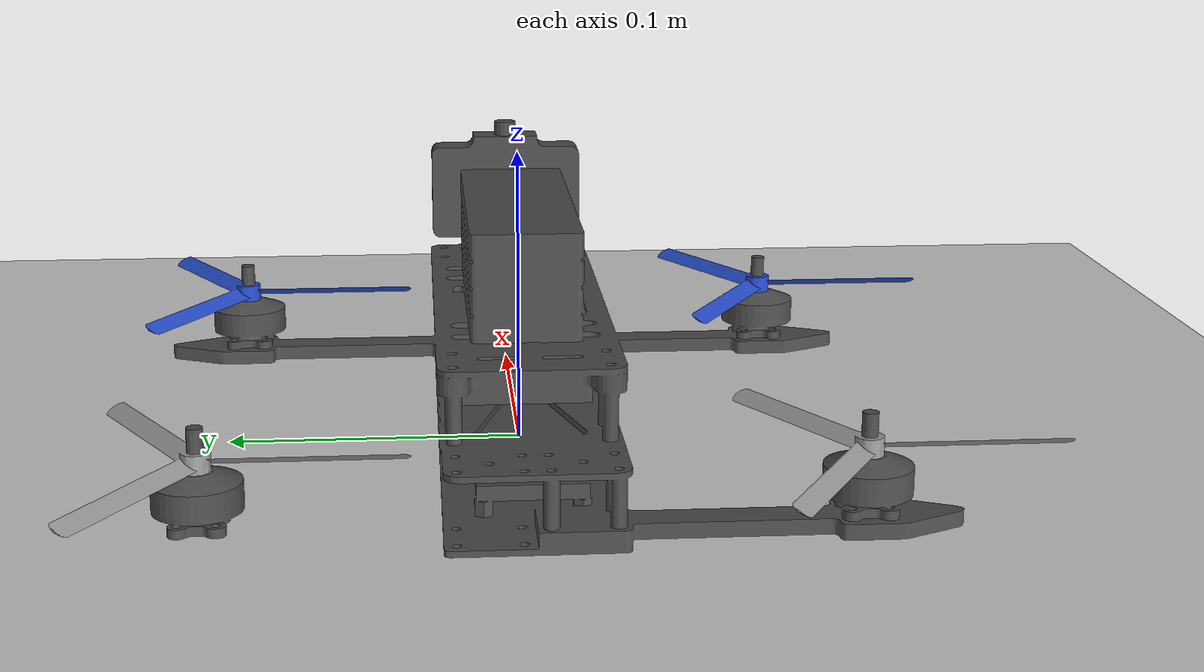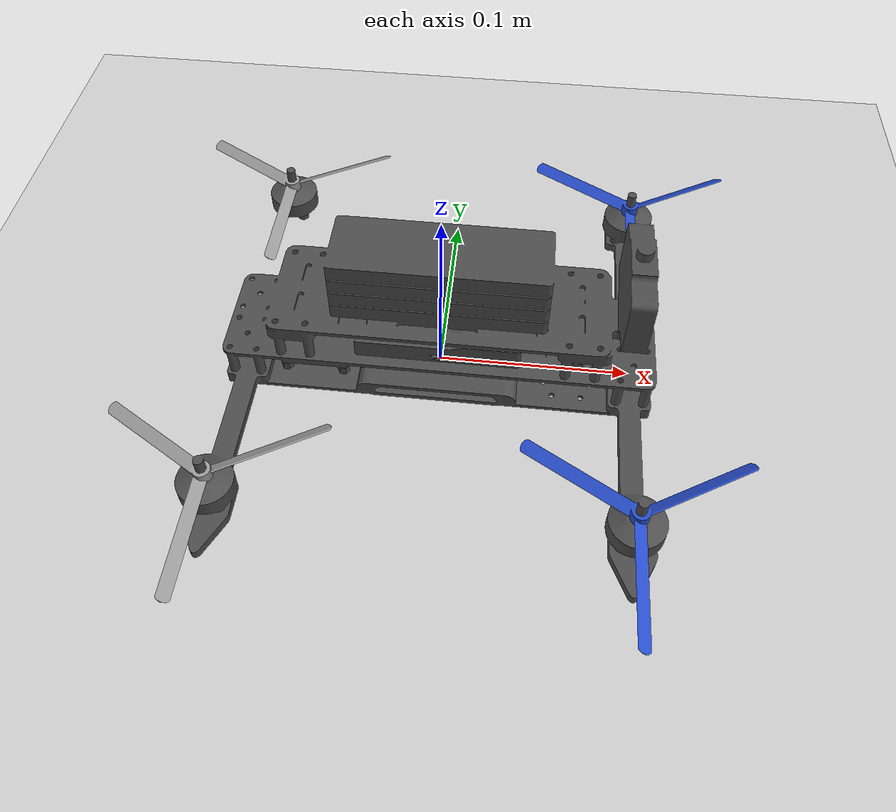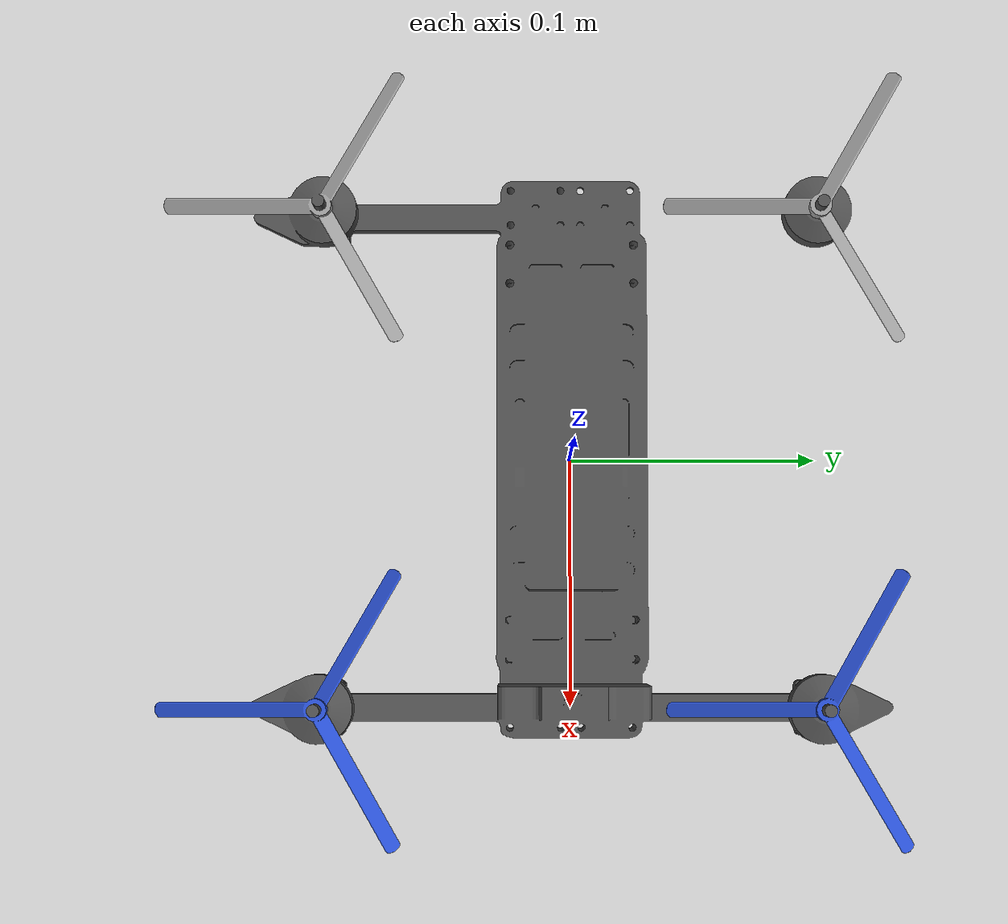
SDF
<?xml version="1.0" ?>

<sdf version="1.6">
  <world name="default">
    <physics type="ode">
      <ode>
        <solver>
          <type>quick</type>
          <iters>100</iters>
          <sor>1.0</sor>
        </solver>
        <constraints>
          <cfm>0.0</cfm>
          <erp>0.9</erp>
          <contact_max_correcting_vel>0.1</contact_max_correcting_vel>
          <contact_surface_layer>0.0</contact_surface_layer>
        </constraints>
      </ode>
      <real_time_update_rate>0</real_time_update_rate>
      <max_step_size>0.0025</max_step_size>
    </physics>

      <include>
      <uri>model://sun</uri>
    </include>

    <model name="ground_plane">
      <static>true</static>
      <link name="link">
        <collision name="collision">
          <geometry>
            <plane>
              <normal>0 0 1</normal>
              <size>5000 5000</size>
            </plane>
          </geometry>
          <surface>
            <friction>
              <ode>
                <mu>1</mu>
                <mu2>1</mu2>
              </ode>
            </friction>
          </surface>
        </collision>
        <visual name="runway">
          <pose>000 0 0.005 0 0 -1.5707</pose>
          <cast_shadows>false</cast_shadows>
          <geometry>
            <plane>
              <normal>0 0 1</normal>
              <size>1829 45</size>
            </plane>
          </geometry>
          <material>
            <script>
              <uri>file://media/materials/scripts/gazebo.material</uri>
              <name>Gazebo/Runway</name>
            </script>
          </material>
        </visual>

        <visual name="grass">
          <pose>0 0 -0.1 0 0 0</pose>
          <cast_shadows>false</cast_shadows>
          <geometry>
            <plane>
              <normal>0 0 1</normal>
              <size>5000 5000</size>
            </plane>
          </geometry>
          <material>
            <script>
              <uri>file://media/materials/scripts/gazebo.material</uri>
              <name>Gazebo/Grass</name>
            </script>
          </material>
        </visual>

      </link>
    </model>

    <model name="lqd_copter">
      <pose> 0 0 0 0 0 0 </pose>
      <include>
        <uri>model://lqd_copter</uri>
         <pose> 0 0 0 0 0 0 </pose>
      </include>
    </model>
  </world>
</sdf>

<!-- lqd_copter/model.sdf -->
<sdf version="1.7">
  <model name="lqd_copter">
    <pose>0 0 0.15 0 0 0</pose>

    <!-- Base Link -->
    <link name="base_link">
      <velocity_decay>
        <linear>0.0</linear>
        <angular>0.0</angular>
      </velocity_decay>
      <inertial>
        <pose>0 0 0 0 0 0</pose>
        <mass>0.52</mass>
        <inertia>
          <ixx>0.011</ixx>
          <ixy>0</ixy>
          <ixz>0</ixz>
          <iyy>0.015</iyy>
          <iyz>0</iyz>
          <izz>0.021</izz>
        </inertia>
      </inertial>

      <collision name="base_link_collision">
        <pose>0 0 0 0 0 0</pose>
        <geometry>
          <box><size>0.4 0.4 0.15</size></box>
        </geometry>
        <surface>
          <friction>
            <ode>
              <mu>1.0</mu>
              <mu2>1.0</mu2>
            </ode>
          </friction>
          <contact>
            <ode>
              <kp>1000000.0</kp>
              <kd>1.0</kd>
              <min_depth>0.001</min_depth>
              <max_vel>0.1</max_vel>
            </ode>
          </contact>
        </surface>
      </collision>

      <visual name="base_link_visual">
        <pose>0 0 0 0 0 0</pose>
        <geometry>
          <mesh>
            <scale>1 1 1</scale>
            <uri>model://lqd_copter/meshes/base_link.STL</uri>
          </mesh>
        </geometry>
        <material>
          <script>
            <name>Gazebo/DarkGrey</name>
            <uri>file://media/materials/scripts/gazebo.material</uri>
          </script>
        </material>
      </visual>
    </link>

    <!-- IMU Link -->
    <link name='imu_link'>
      <pose>0 0 0 0 0 0</pose>
      <inertial>
        <pose>0 0 0 0 0 0</pose>
        <mass>0.015</mass>
        <inertia>
          <ixx>0.00001</ixx><ixy>0</ixy><ixz>0</ixz>
          <iyy>0.00002</iyy><iyz>0</iyz><izz>0.00002</izz>
        </inertia>
      </inertial>
      <sensor name="imu_sensor" type="imu">
        <pose>0 0 0 3.141593 0 0</pose>
        <always_on>1</always_on>
        <update_rate>1000.0</update_rate>
      </sensor>
    </link>
    <joint name='imu_joint' type='revolute'>
      <child>imu_link</child>
      <parent>base_link</parent>
      <axis>
        <xyz>0 0 1</xyz>
        <limit><lower>0</lower><upper>0</upper><effort>0</effort><velocity>0</velocity></limit>
      </axis>
    </joint>

    <!-- Rotor 0 -->
    <joint name="rotor_0_joint" type="revolute">
      <pose relative_to="base_link">0.1 -0.1 0.025 0 0 0</pose>
      <parent>base_link</parent>
      <child>rotor_0_link</child>
      <axis>
        <xyz>0 0 1</xyz>
        <limit><lower>-1e16</lower><upper>1e16</upper></limit>
        <dynamics><spring_reference>0</spring_reference><spring_stiffness>0</spring_stiffness></dynamics>
      </axis>
    </joint>
    <link name="rotor_0_link">
      <pose relative_to="rotor_0_joint">0 0 0 0 0 0</pose>
      <inertial>
        <mass>0.005</mass>
        <inertia>
          <ixx>9.75e-06</ixx>
          <ixy>0</ixy><ixz>0</ixz>
          <iyy>0.000273104</iyy><iyz>0</iyz><izz>0.000274004</izz>
        </inertia>
      </inertial>
      <visual name="rotor_0_visual">
        <geometry>
          <mesh><scale>1 1 1</scale><uri>model://lqd_copter/meshes/properller_1_link.STL</uri></mesh>
        </geometry>
        <material><script><name>Gazebo/Blue</name></script></material>
      </visual>
    </link>

    <!-- Rotor 1 -->
    <joint name="rotor_1_joint" type="revolute">
      <pose relative_to="base_link">-0.1 0.1 0.025 0 0 0</pose>
      <parent>base_link</parent>
      <child>rotor_1_link</child>
      <axis>
        <xyz>0 0 1</xyz>
        <limit><lower>-1e16</lower><upper>1e16</upper></limit>
        <dynamics><spring_reference>0</spring_reference><spring_stiffness>0</spring_stiffness></dynamics>
      </axis>
    </joint>
    <link name="rotor_1_link">
      <pose relative_to="rotor_1_joint">0 0 0 0 0 0</pose>
      <inertial>
        <mass>0.005</mass>
        <inertia>
          <ixx>9.75e-06</ixx>
          <ixy>0</ixy><ixz>0</ixz>
          <iyy>0.000273104</iyy><iyz>0</iyz><izz>0.000274004</izz>
        </inertia>
      </inertial>
      <visual name="rotor_1_visual">
        <geometry>
          <mesh><scale>1 1 1</scale><uri>model://lqd_copter/meshes/properller_2_link.STL</uri></mesh>
        </geometry>
        <material><script><name>Gazebo/Grey</name></script></material>
      </visual>
    </link>

    <!-- Rotor 2 -->
    <joint name="rotor_2_joint" type="revolute">
      <pose relative_to="base_link">0.1 0.1 0.025 0 0 0</pose>
      <parent>base_link</parent>
      <child>rotor_2_link</child>
      <axis>
        <xyz>0 0 1</xyz>
        <limit><lower>-1e16</lower><upper>1e16</upper></limit>
        <dynamics><spring_reference>0</spring_reference><spring_stiffness>0</spring_stiffness></dynamics>
      </axis>
    </joint>
    <link name="rotor_2_link">
      <pose relative_to="rotor_2_joint">0 0 0 0 0 0</pose>
      <inertial>
        <mass>0.005</mass>
        <inertia>
          <ixx>9.75e-06</ixx>
          <ixy>0</ixy><ixz>0</ixz>
          <iyy>0.000273104</iyy><iyz>0</iyz><izz>0.000274004</izz>
        </inertia>
      </inertial>
      <visual name="rotor_2_visual">
        <geometry>
          <mesh><scale>1 1 1</scale><uri>model://lqd_copter/meshes/properller_3_link.STL</uri></mesh>
        </geometry>
        <material><script><name>Gazebo/Blue</name></script></material>
      </visual>
    </link>

    <!-- Rotor 3 -->
    <joint name="rotor_3_joint" type="revolute">
      <pose relative_to="base_link">-0.1 -0.1 0.025 0 0 0</pose>
      <parent>base_link</parent>
      <child>rotor_3_link</child>
      <axis>
        <xyz>0 0 1</xyz>
        <limit><lower>-1e16</lower><upper>1e16</upper></limit>
        <dynamics><spring_reference>0</spring_reference><spring_stiffness>0</spring_stiffness></dynamics>
      </axis>
    </joint>
    <link name="rotor_3_link">
      <pose relative_to="rotor_3_joint">0 0 0 0 0 0</pose>
      <inertial>
        <mass>0.005</mass>
        <inertia>
          <ixx>9.75e-06</ixx>
          <ixy>0</ixy><ixz>0</ixz>
          <iyy>0.000273104</iyy><iyz>0</iyz><izz>0.000274004</izz>
        </inertia>
      </inertial>
      <visual name="rotor_3_visual">
        <geometry>
          <mesh><scale>1 1 1</scale><uri>model://lqd_copter/meshes/properller_4_link.STL</uri></mesh>
        </geometry>
        <material><script><name>Gazebo/Grey</name></script></material>
      </visual>
    </link>

    <!-- Aerodynamics (Softened for Light Drone)    -->
    <!-- CDA reduced from 0.10 to 0.01              -->

    <!-- Rotor 0 (CCW) -->
    <plugin name="rotor_0_blade_1" filename="libLiftDragPlugin.so">
      <a0>0.3</a0><alpha_stall>1.4</alpha_stall><cla>4.25</cla>
      <cda>0.01</cda> <!-- Reduced Drag -->
      <cma>0.0</cma><cla_stall>-0.025</cla_stall><cda_stall>0.0</cda_stall><cma_stall>0.0</cma_stall>
      <area>0.002</area><air_density>1.2041</air_density>
      <cp>0.084 0 0</cp><forward>0 1 0</forward><upward>0 0 1</upward>
      <link_name>rotor_0_link</link_name>
    </plugin>
    <plugin name="rotor_0_blade_2" filename="libLiftDragPlugin.so">
      <a0>0.3</a0><alpha_stall>1.4</alpha_stall><cla>4.25</cla>
      <cda>0.01</cda> <!-- Reduced Drag -->
      <cma>0.0</cma><cla_stall>-0.025</cla_stall><cda_stall>0.0</cda_stall><cma_stall>0.0</cma_stall>
      <area>0.002</area><air_density>1.2041</air_density>
      <cp>-0.084 0 0</cp><forward>0 -1 0</forward><upward>0 0 1</upward>
      <link_name>rotor_0_link</link_name>
    </plugin>

    <!-- Rotor 1 (CCW) -->
    <plugin name="rotor_1_blade_1" filename="libLiftDragPlugin.so">
      <a0>0.3</a0><alpha_stall>1.4</alpha_stall><cla>4.25</cla>
      <cda>0.01</cda> <!-- Reduced Drag -->
      <cma>0.0</cma><cla_stall>-0.025</cla_stall><cda_stall>0.0</cda_stall><cma_stall>0.0</cma_stall>
      <area>0.002</area><air_density>1.2041</air_density>
      <cp>0.084 0 0</cp><forward>0 1 0</forward><upward>0 0 1</upward>
      <link_name>rotor_1_link</link_name>
    </plugin>
    <plugin name="rotor_1_blade_2" filename="libLiftDragPlugin.so">
      <a0>0.3</a0><alpha_stall>1.4</alpha_stall><cla>4.25</cla>
      <cda>0.01</cda> <!-- Reduced Drag -->
      <cma>0.0</cma><cla_stall>-0.025</cla_stall><cda_stall>0.0</cda_stall><cma_stall>0.0</cma_stall>
      <area>0.002</area><air_density>1.2041</air_density>
      <cp>-0.084 0 0</cp><forward>0 -1 0</forward><upward>0 0 1</upward>
      <link_name>rotor_1_link</link_name>
    </plugin>

    <!-- Rotor 2 (CW) -->
    <plugin name="rotor_2_blade_1" filename="libLiftDragPlugin.so">
      <a0>0.3</a0><alpha_stall>1.4</alpha_stall><cla>4.25</cla>
      <cda>0.01</cda> <!-- Reduced Drag -->
      <cma>0.0</cma><cla_stall>-0.025</cla_stall><cda_stall>0.0</cda_stall><cma_stall>0.0</cma_stall>
      <area>0.002</area><air_density>1.2041</air_density>
      <cp>0.084 0 0</cp><forward>0 -1 0</forward><upward>0 0 1</upward>
      <link_name>rotor_2_link</link_name>
    </plugin>
    <plugin name="rotor_2_blade_2" filename="libLiftDragPlugin.so">
      <a0>0.3</a0><alpha_stall>1.4</alpha_stall><cla>4.25</cla>
      <cda>0.01</cda> <!-- Reduced Drag -->
      <cma>0.0</cma><cla_stall>-0.025</cla_stall><cda_stall>0.0</cda_stall><cma_stall>0.0</cma_stall>
      <area>0.002</area><air_density>1.2041</air_density>
      <cp>-0.084 0 0</cp><forward>0 1 0</forward><upward>0 0 1</upward>
      <link_name>rotor_2_link</link_name>
    </plugin>

    <!-- Rotor 3 (CW) -->
    <plugin name="rotor_3_blade_1" filename="libLiftDragPlugin.so">
      <a0>0.3</a0><alpha_stall>1.4</alpha_stall><cla>4.25</cla>
      <cda>0.01</cda> <!-- Reduced Drag -->
      <cma>0.0</cma><cla_stall>-0.025</cla_stall><cda_stall>0.0</cda_stall><cma_stall>0.0</cma_stall>
      <area>0.002</area><air_density>1.2041</air_density>
      <cp>0.084 0 0</cp><forward>0 -1 0</forward><upward>0 0 1</upward>
      <link_name>rotor_3_link</link_name>
    </plugin>
    <plugin name="rotor_3_blade_2" filename="libLiftDragPlugin.so">
      <a0>0.3</a0><alpha_stall>1.4</alpha_stall><cla>4.25</cla>
      <cda>0.01</cda> <!-- Reduced Drag -->
      <cma>0.0</cma><cla_stall>-0.025</cla_stall><cda_stall>0.0</cda_stall><cma_stall>0.0</cma_stall>
      <area>0.002</area><air_density>1.2041</air_density>
      <cp>-0.084 0 0</cp><forward>0 1 0</forward><upward>0 0 1</upward>
      <link_name>rotor_3_link</link_name>
    </plugin>

    <!-- ArduPilot Plugin -->
    <plugin name="ardupilot_plugin" filename="libArduPilotPlugin.so">
      <fdm_addr>127.0.0.1</fdm_addr>
      <fdm_port_in>9002</fdm_port_in>
      <fdm_port_out>9003</fdm_port_out>

      <modelXYZToAirplaneXForwardZDown>0 0 0 3.141593 0 0</modelXYZToAirplaneXForwardZDown>

      <imuName>lqd_copter::imu_link::imu_sensor</imuName>
      <connectionTimeoutMaxCount>5</connectionTimeoutMaxCount>

      <!-- Channel 0 (Rotor 0, CCW) -->
      <control channel="0">
        <type>VELOCITY</type>
        <offset>0</offset>
        <p_gain>0.10</p_gain> <!-- Reduced P Gain -->
        <i_gain>0</i_gain>
        <d_gain>0</d_gain>
        <i_max>0</i_max>
        <i_min>0</i_min>
        <cmd_max>2.5</cmd_max>
        <cmd_min>-2.5</cmd_min>
        <jointName>rotor_0_joint</jointName>
        <multiplier>838</multiplier>
        <controlVelocitySlowdownSim>1</controlVelocitySlowdownSim>
      </control>

      <!-- Channel 1 (Rotor 1, CCW) -->
      <control channel="1">
        <type>VELOCITY</type>
        <offset>0</offset>
        <p_gain>0.10</p_gain> <!-- Reduced P Gain -->
        <i_gain>0</i_gain>
        <d_gain>0</d_gain>
        <i_max>0</i_max>
        <i_min>0</i_min>
        <cmd_max>2.5</cmd_max>
        <cmd_min>-2.5</cmd_min>
        <jointName>rotor_1_joint</jointName>
        <multiplier>838</multiplier>
        <controlVelocitySlowdownSim>1</controlVelocitySlowdownSim>
      </control>

      <!-- Channel 2 (Rotor 2, CW) -->
      <control channel="2">
        <type>VELOCITY</type>
        <offset>0</offset>
        <p_gain>0.10</p_gain> <!-- Reduced P Gain -->
        <i_gain>0</i_gain>
        <d_gain>0</d_gain>
        <i_max>0</i_max>
        <i_min>0</i_min>
        <cmd_max>2.5</cmd_max>
        <cmd_min>-2.5</cmd_min>
        <jointName>rotor_2_joint</jointName>
        <multiplier>-838</multiplier>
        <controlVelocitySlowdownSim>1</controlVelocitySlowdownSim>
      </control>

      <!-- Channel 3 (Rotor 3, CW) -->
      <control channel="3">
        <type>VELOCITY</type>
        <offset>0</offset>
        <p_gain>0.10</p_gain> <!-- Reduced P Gain -->
        <i_gain>0</i_gain>
        <d_gain>0</d_gain>
        <i_max>0</i_max>
        <i_min>0</i_min>
        <cmd_max>2.5</cmd_max>
        <cmd_min>-2.5</cmd_min>
        <jointName>rotor_3_joint</jointName>
        <multiplier>-838</multiplier>
        <controlVelocitySlowdownSim>1</controlVelocitySlowdownSim>
      </control>

    </plugin>
  </model>
</sdf>
